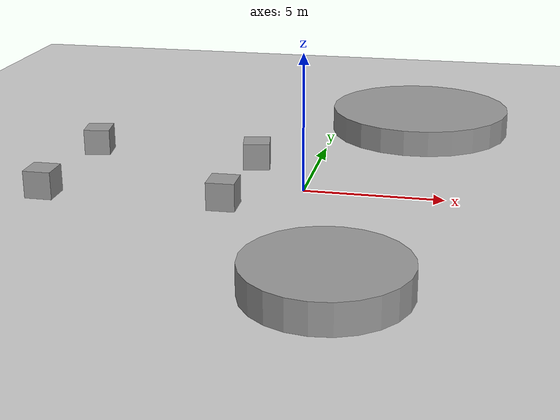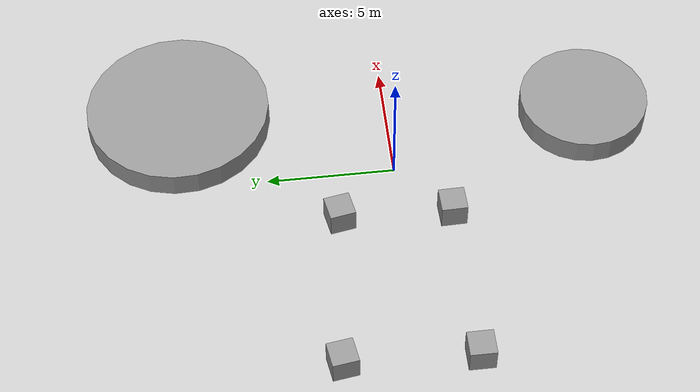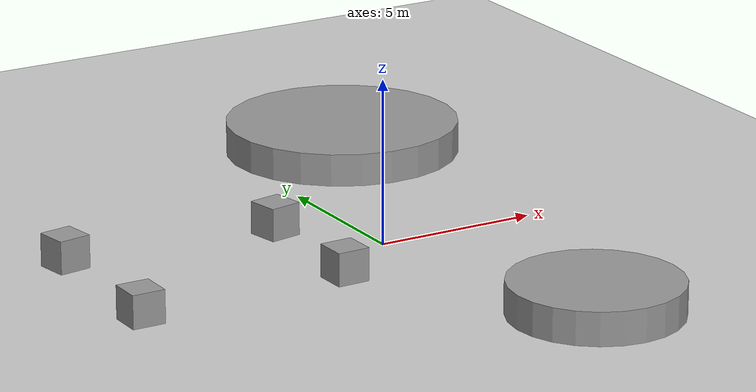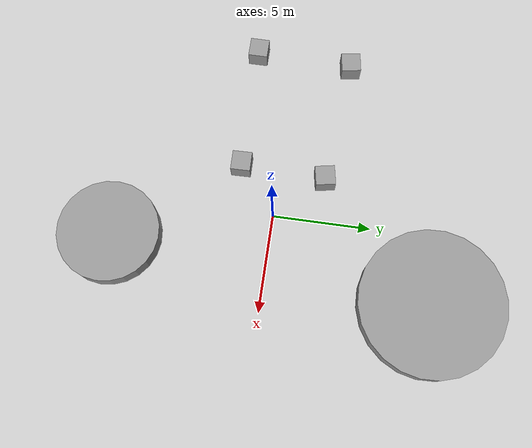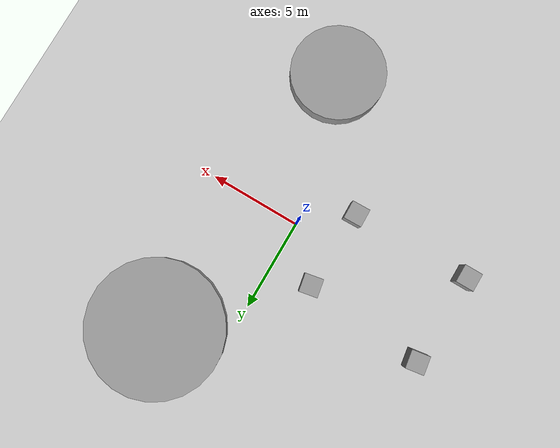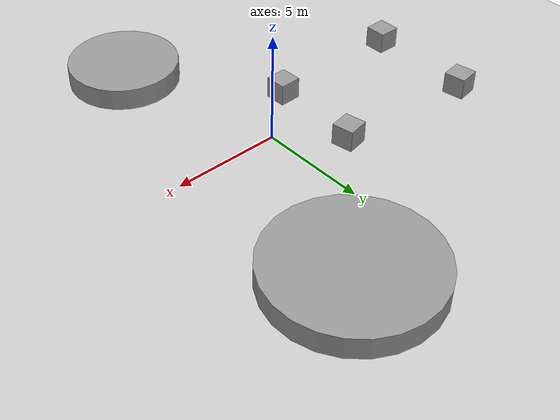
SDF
<sdf version="1.7">
 <world name="default">
  <light name="sun" type="directional">
   <pose>0 0 10 0 -0 0</pose>
   <diffuse>0.8 0.8 0.8 1</diffuse>
   <specular>0.2 0.2 0.2 1</specular>
   <attenuation>
    <range>1000</range>
    <constant>0.9</constant>
    <linear>0.01</linear>
    <quadratic>0.001</quadratic>
   </attenuation>
   <direction>-0.5 0.1 -0.9</direction>
   <spot><inner_angle>0</inner_angle><outer_angle>0</outer_angle><falloff>0</falloff></spot>
  </light>
  <model name="ground_plane">
   <static>1</static>
   <link name="link">
    <collision name="collision">
     <geometry><plane><normal>0 0 1</normal><size>100 100</size></plane></geometry>
     <surface>
      <contact><collide_bitmask>65535</collide_bitmask></contact>
      <friction><ode><mu>100</mu><mu2>50</mu2></ode></friction>
     </surface>
    </collision>
    <visual name="visual">
     <cast_shadows>0</cast_shadows>
     <geometry><plane><normal>0 0 1</normal><size>100 100</size></plane></geometry>
     <material>
      <script><uri>file://media/materials/scripts/gazebo.material</uri><name>Gazebo/Grey</name></script>
     </material>
    </visual>
   </link>
  </model>
  <gravity>0 0 -9.8</gravity>
  <magnetic_field>6e-06 2.3e-05 -4.2e-05</magnetic_field>
  <atmosphere type="adiabatic"/>
  <physics type="ode">
   <max_step_size>0.001</max_step_size>
   <real_time_factor>1</real_time_factor>
   <real_time_update_rate>1000</real_time_update_rate>
  </physics>
  <scene><ambient>0.4 0.4 0.4 1</ambient><background>0.7 0.7 0.7 1</background><shadows>1</shadows></scene>
  <spherical_coordinates>
   <surface_model>EARTH_WGS84</surface_model>
   <latitude_deg>0</latitude_deg>
   <longitude_deg>0</longitude_deg>
   <elevation>0</elevation>
   <heading_deg>0</heading_deg>
  </spherical_coordinates>
  <model name="unit_box">
   <pose>-2.24189 2.37616 0.500002 4e-06 -0 0.184353</pose>
   <link name="link">
    <inertial>
     <mass>1</mass>
     <inertia>
      <ixx>0.166667</ixx>
      <ixy>0</ixy>
      <ixz>0</ixz>
      <iyy>0.166667</iyy>
      <iyz>0</iyz>
      <izz>0.166667</izz>
     </inertia>
    </inertial>
    <collision name="collision"><geometry><box><size>1 1 1</size></box></geometry></collision>
    <visual name="visual">
     <geometry><box><size>1 1 1</size></box></geometry>
     <material>
      <script><name>Gazebo/Grey</name><uri>file://media/materials/scripts/gazebo.material</uri></script>
     </material>
    </visual>
   </link>
  </model>
  <model name="unit_cylinder">
   <pose>3.46174 8.27649 0.485506 -0.003979 -0.000374 -0.093619</pose>
   <link name="link">
    <inertial>
     <mass>1</mass>
     <inertia><ixx>0.145833</ixx><ixy>0</ixy><ixz>0</ixz><iyy>0.145833</iyy><iyz>0</iyz><izz>0.125</izz></inertia>
    </inertial>
    <collision name="collision">
     <geometry><cylinder><radius>3.62984</radius><length>1</length></cylinder></geometry>
    </collision>
    <visual name="visual">
     <geometry><cylinder><radius>3.62984</radius><length>1</length></cylinder></geometry>
     <material>
      <script><name>Gazebo/Grey</name><uri>file://media/materials/scripts/gazebo.material</uri></script>
     </material>
    </visual>
   </link>
  </model>
  <model name="unit_box_0">
   <pose>-8.78052 2.96615 0.5 0 -0 0.153219</pose>
   <link name="link">
    <inertial>
     <mass>1</mass>
     <inertia>
      <ixx>0.166667</ixx>
      <ixy>0</ixy>
      <ixz>0</ixz>
      <iyy>0.166667</iyy>
      <iyz>0</iyz>
      <izz>0.166667</izz>
     </inertia>
    </inertial>
    <collision name="collision"><geometry><box><size>1 1 1</size></box></geometry></collision>
    <visual name="visual">
     <geometry><box><size>1 1 1</size></box></geometry>
     <material>
      <script><name>Gazebo/Grey</name><uri>file://media/materials/scripts/gazebo.material</uri></script>
     </material>
    </visual>
   </link>
  </model>
  <model name="unit_box_1">
   <pose>-8.95762 -2.03731 0.499995 -1e-05 -0 -0</pose>
   <link name="link">
    <inertial>
     <mass>1</mass>
     <inertia>
      <ixx>0.166667</ixx>
      <ixy>0</ixy>
      <ixz>0</ixz>
      <iyy>0.166667</iyy>
      <iyz>0</iyz>
      <izz>0.166667</izz>
     </inertia>
    </inertial>
    <collision name="collision"><geometry><box><size>1 1 1</size></box></geometry></collision>
    <visual name="visual">
     <geometry><box><size>1 1 1</size></box></geometry>
     <material>
      <script><name>Gazebo/Grey</name><uri>file://media/materials/scripts/gazebo.material</uri></script>
     </material>
    </visual>
   </link>
  </model>
  <model name="unit_box_2">
   <pose>-2.42164 -1.96732 0.499995 -1e-05 -0 0.023449</pose>
   <link name="link">
    <inertial>
     <mass>1</mass>
     <inertia>
      <ixx>0.166667</ixx>
      <ixy>0</ixy>
      <ixz>0</ixz>
      <iyy>0.166667</iyy>
      <iyz>0</iyz>
      <izz>0.166667</izz>
     </inertia>
    </inertial>
    <collision name="collision"><geometry><box><size>1 1 1</size></box></geometry></collision>
    <visual name="visual">
     <geometry><box><size>1 1 1</size></box></geometry>
     <material>
      <script><name>Gazebo/Grey</name><uri>file://media/materials/scripts/gazebo.material</uri></script>
     </material>
    </visual>
   </link>
  </model>
  <model name="unit_cylinder_0">
   <pose>2.125 -7.93869 0.496954 -2.5e-05 0.001194 -0.020702</pose>
   <link name="link">
    <inertial>
     <mass>1</mass>
     <inertia><ixx>0.145833</ixx><ixy>0</ixy><ixz>0</ixz><iyy>0.145833</iyy><iyz>0</iyz><izz>0.125</izz></inertia>
    </inertial>
    <collision name="collision">
     <geometry><cylinder><radius>2.55033</radius><length>1</length></cylinder></geometry>
    </collision>
    <visual name="visual">
     <geometry><cylinder><radius>2.55033</radius><length>1</length></cylinder></geometry>
     <material>
      <script><name>Gazebo/Grey</name><uri>file://media/materials/scripts/gazebo.material</uri></script>
     </material>
    </visual>
   </link>
  </model>
 </world>
</sdf>
